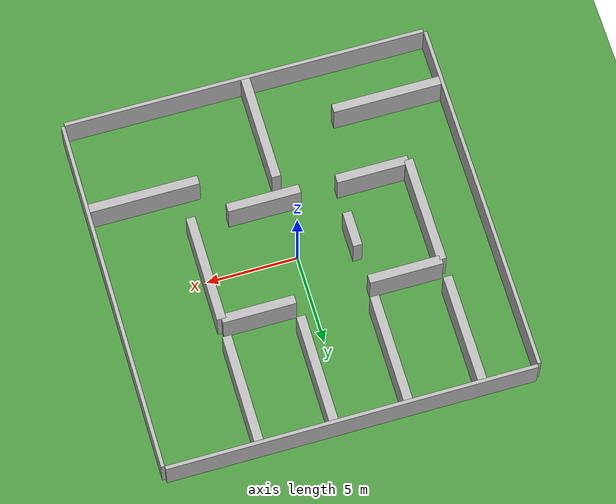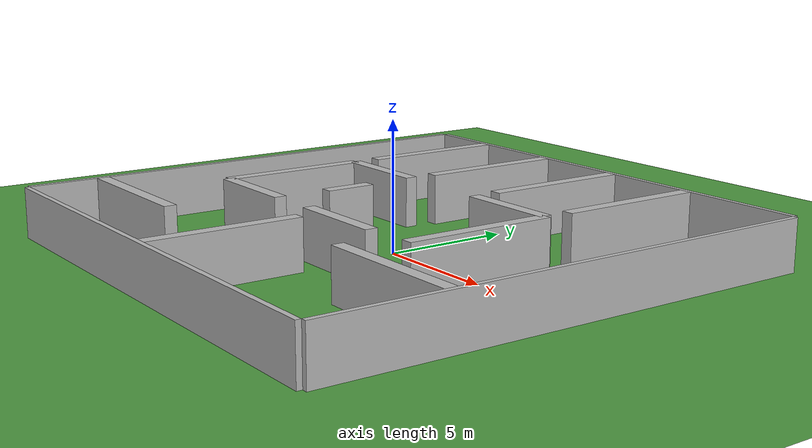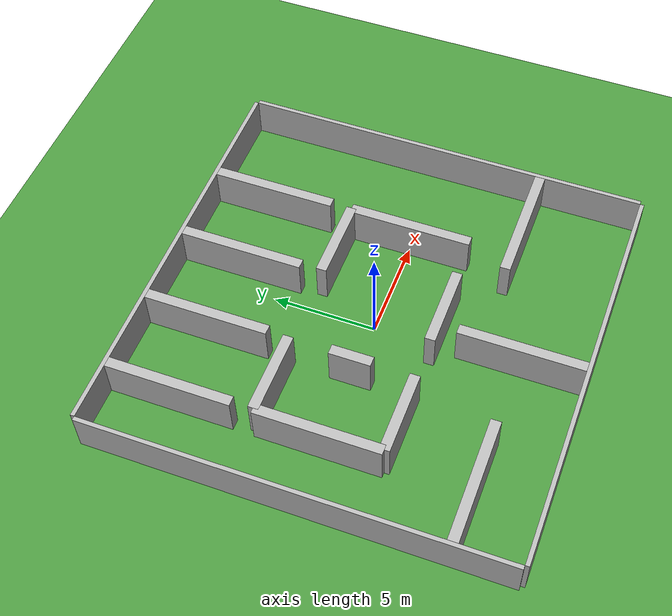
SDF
<?xml version='1.0' encoding='utf-8'?>
<sdf version="1.6">
  <world name="dead_end_maze_world">
    <physics type="ode">
      <real_time_update_rate>1000</real_time_update_rate>
      <gravity>0 0 -9.81</gravity>
    </physics>

    <!-- Ground Plane -->
    <model name="ground_plane">
      <static>true</static>
      <link name="ground_link">
        <collision name="collision">
          <geometry><plane><normal>0 0 1</normal><size>20 20</size></plane></geometry>
        </collision>
        <visual name="visual">
          <geometry><plane><normal>0 0 1</normal><size>20 20</size></plane></geometry>
          <material>
            <script><uri>file://media/materials/scripts/gazebo.material</uri><name>Gazebo/Grass</name></script>
          </material>
        </visual>
      </link>
    </model>

    <!-- Boundary Walls -->
    <model name="wall_north">
      <static>true</static>
      <pose>0 10.1 1.0 0 0 0</pose>
      <link name="link">
        <collision name="collision"><geometry><box><size>20 0.2 2.0</size></box></geometry></collision>
        <visual name="visual"><geometry><box><size>20 0.2 2.0</size></box></geometry></visual>
      </link>
    </model>

    <model name="wall_south">
      <static>true</static>
      <pose>0 -10.1 1.0 0 0 0</pose>
      <link name="link">
        <collision name="collision"><geometry><box><size>20 0.2 2.0</size></box></geometry></collision>
        <visual name="visual"><geometry><box><size>20 0.2 2.0</size></box></geometry></visual>
      </link>
    </model>

    <model name="wall_east">
      <static>true</static>
      <pose>10.1 0 1.0 0 0 0</pose>
      <link name="link">
        <collision name="collision"><geometry><box><size>0.2 20 2.0</size></box></geometry></collision>
        <visual name="visual"><geometry><box><size>0.2 20 2.0</size></box></geometry></visual>
      </link>
    </model>

    <model name="wall_west">
      <static>true</static>
      <pose>-10.1 0 1.0 0 0 0</pose>
      <link name="link">
        <collision name="collision"><geometry><box><size>0.2 20 2.0</size></box></geometry></collision>
        <visual name="visual"><geometry><box><size>0.2 20 2.0</size></box></geometry></visual>
      </link>
    </model>

    <!-- Maze Obstacles -->
    <!-- Maze Columns and Walls -->
    <model name="maze_wall_0">
      <static>true</static>
      <pose>-7 7 1.0 0 0 0</pose>
      <link name="link">
        <collision name="collision">
          <geometry><box><size>0.5 6.0 2.0</size></box></geometry>
        </collision>
        <visual name="visual">
          <geometry><box><size>0.5 6.0 2.0</size></box></geometry>
        </visual>
      </link>
    </model>

    <model name="maze_wall_1">
      <static>true</static>
      <pose>-3 7 1.0 0 0 0</pose>
      <link name="link">
        <collision name="collision">
          <geometry><box><size>0.5 6.0 2.0</size></box></geometry>
        </collision>
        <visual name="visual">
          <geometry><box><size>0.5 6.0 2.0</size></box></geometry>
        </visual>
      </link>
    </model>

    <model name="maze_wall_2">
      <static>true</static>
      <pose>1 7 1.0 0 0 0</pose>
      <link name="link">
        <collision name="collision">
          <geometry><box><size>0.5 6.0 2.0</size></box></geometry>
        </collision>
        <visual name="visual">
          <geometry><box><size>0.5 6.0 2.0</size></box></geometry>
        </visual>
      </link>
    </model>

    <model name="maze_wall_3">
      <static>true</static>
      <pose>5 7 1.0 0 0 0</pose>
      <link name="link">
        <collision name="collision">
          <geometry><box><size>0.5 6.0 2.0</size></box></geometry>
        </collision>
        <visual name="visual">
          <geometry><box><size>0.5 6.0 2.0</size></box></geometry>
        </visual>
      </link>
    </model>

    <model name="maze_wall_4">
      <static>true</static>
      <pose>-5 3 1.0 0 0 0</pose>
      <link name="link">
        <collision name="collision">
          <geometry><box><size>4.0 0.5 2.0</size></box></geometry>
        </collision>
        <visual name="visual">
          <geometry><box><size>4.0 0.5 2.0</size></box></geometry>
        </visual>
      </link>
    </model>

    <model name="maze_wall_5">
      <static>true</static>
      <pose>3 3 1.0 0 0 0</pose>
      <link name="link">
        <collision name="collision">
          <geometry><box><size>4.0 0.5 2.0</size></box></geometry>
        </collision>
        <visual name="visual">
          <geometry><box><size>4.0 0.5 2.0</size></box></geometry>
        </visual>
      </link>
    </model>

    <model name="maze_wall_6">
      <static>true</static>
      <pose>-7 0 1.0 0 0 0</pose>
      <link name="link">
        <collision name="collision">
          <geometry><box><size>0.5 6.0 2.0</size></box></geometry>
        </collision>
        <visual name="visual">
          <geometry><box><size>0.5 6.0 2.0</size></box></geometry>
        </visual>
      </link>
    </model>

    <model name="maze_wall_7">
      <static>true</static>
      <pose>-3 0 1.0 0 0 0</pose>
      <link name="link">
        <collision name="collision">
          <geometry><box><size>0.5 2.0 2.0</size></box></geometry>
        </collision>
        <visual name="visual">
          <geometry><box><size>0.5 2.0 2.0</size></box></geometry>
        </visual>
      </link>
    </model>

    <model name="maze_wall_8">
      <static>true</static>
      <pose>5 0 1.0 0 0 0</pose>
      <link name="link">
        <collision name="collision">
          <geometry><box><size>0.5 6.0 2.0</size></box></geometry>
        </collision>
        <visual name="visual">
          <geometry><box><size>0.5 6.0 2.0</size></box></geometry>
        </visual>
      </link>
    </model>

    <model name="maze_wall_9">
      <static>true</static>
      <pose>-5 -3 1.0 0 0 0</pose>
      <link name="link">
        <collision name="collision">
          <geometry><box><size>4.0 0.5 2.0</size></box></geometry>
        </collision>
        <visual name="visual">
          <geometry><box><size>4.0 0.5 2.0</size></box></geometry>
        </visual>
      </link>
    </model>

    <model name="maze_wall_10">
      <static>true</static>
      <pose>1 -3 1.0 0 0 0</pose>
      <link name="link">
        <collision name="collision">
          <geometry><box><size>4.0 0.5 2.0</size></box></geometry>
        </collision>
        <visual name="visual">
          <geometry><box><size>4.0 0.5 2.0</size></box></geometry>
        </visual>
      </link>
    </model>

    <model name="maze_wall_11">
      <static>true</static>
      <pose>7 -5 1.0 0 0 0</pose>
      <link name="link">
        <collision name="collision">
          <geometry><box><size>6.0 0.5 2.0</size></box></geometry>
        </collision>
        <visual name="visual">
          <geometry><box><size>6.0 0.5 2.0</size></box></geometry>
        </visual>
      </link>
    </model>

    <model name="maze_wall_12">
      <static>true</static>
      <pose>-7 -7 1.0 0 0 0</pose>
      <link name="link">
        <collision name="collision">
          <geometry><box><size>6.0 0.5 2.0</size></box></geometry>
        </collision>
        <visual name="visual">
          <geometry><box><size>6.0 0.5 2.0</size></box></geometry>
        </visual>
      </link>
    </model>

    <model name="maze_wall_13">
      <static>true</static>
      <pose>0 -7 1.0 0 0 1.5707</pose>
      <link name="link">
        <collision name="collision">
          <geometry><box><size>6.0 0.5 2.0</size></box></geometry>
        </collision>
        <visual name="visual">
          <geometry><box><size>6.0 0.5 2.0</size></box></geometry>
        </visual>
      </link>
    </model>

    <!-- Light source -->
    <include>
      <uri>model://sun</uri>
    </include>

  </world>
</sdf>
